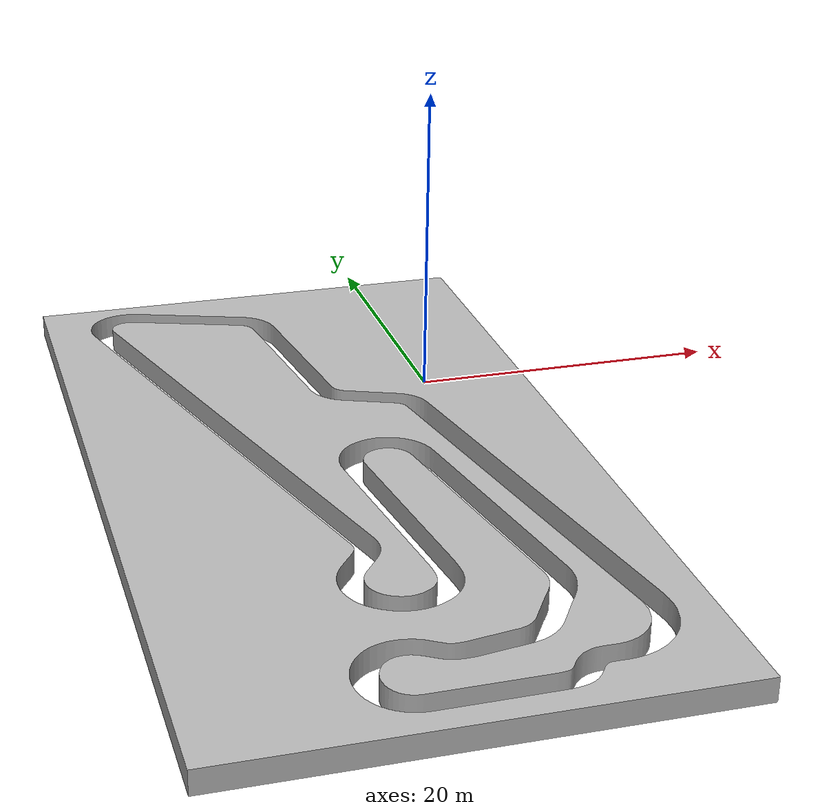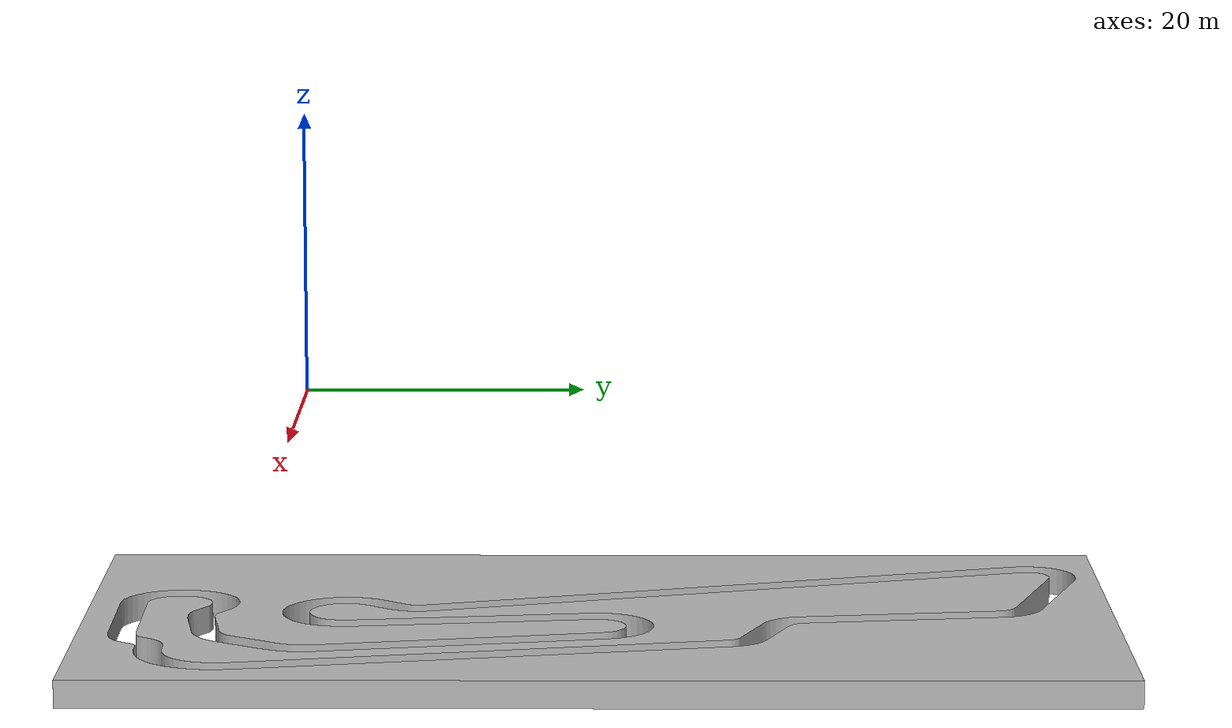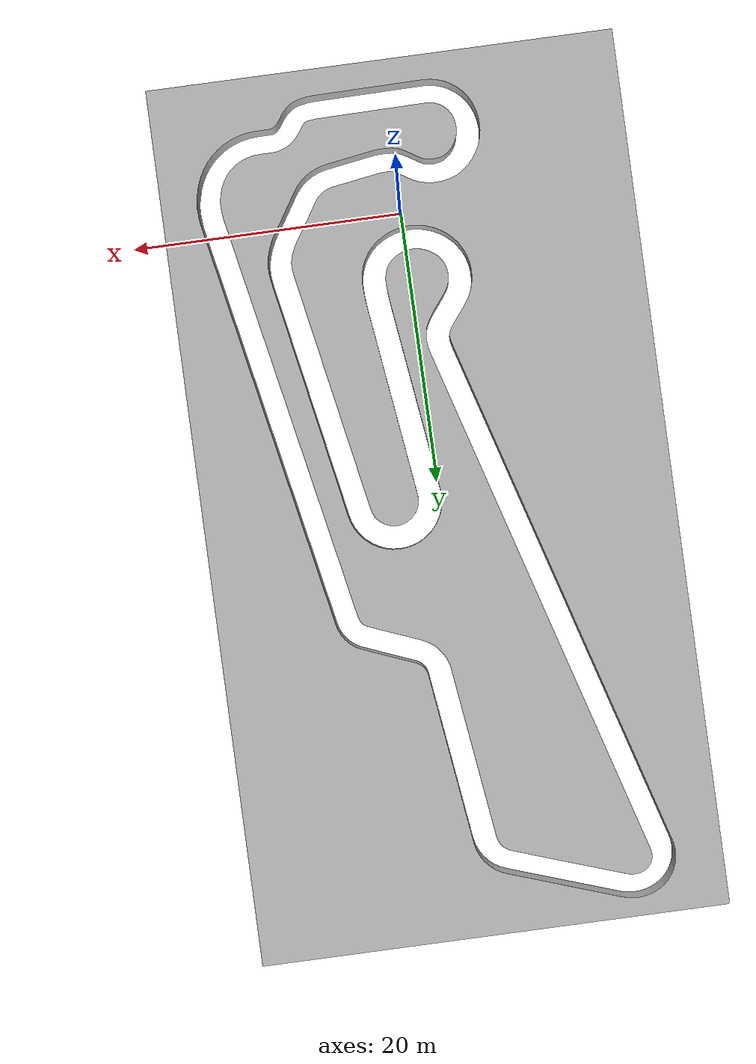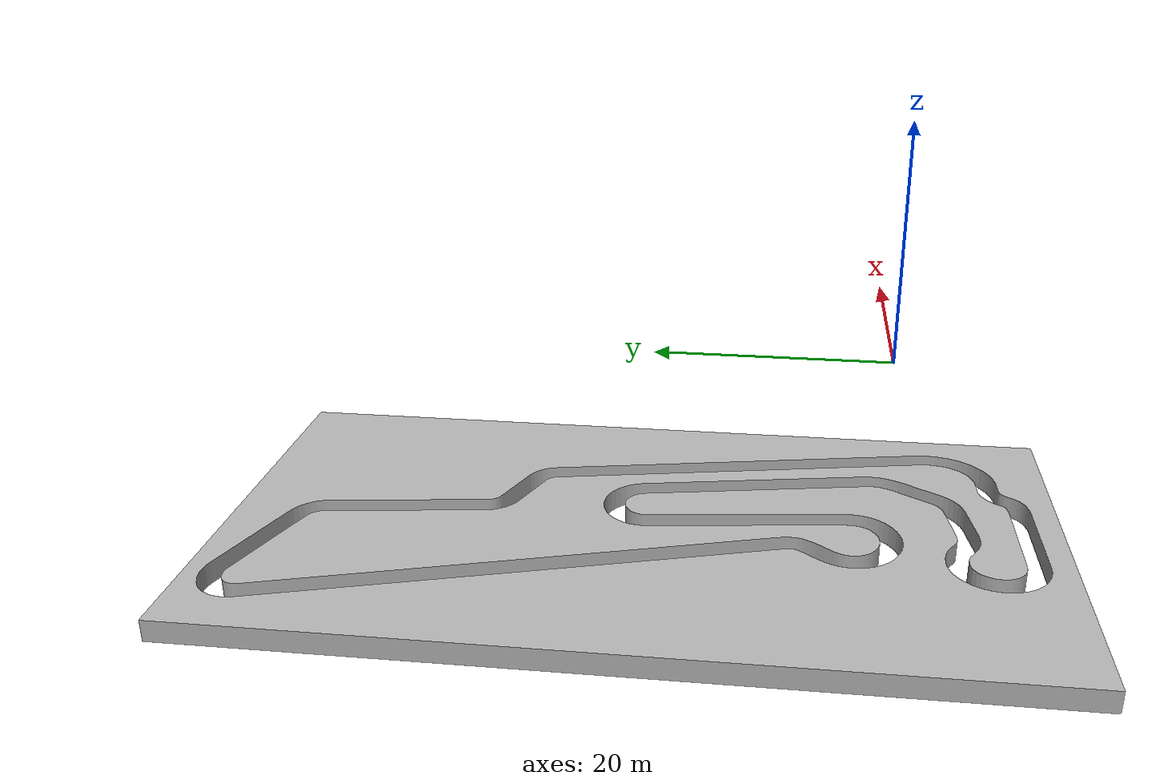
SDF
<?xml version='1.0'?>

<sdf version='1.4'>

  <model name="oschersleben_track">

    <link name="link">

      <collision name="collision">
        <geometry>
          <mesh>
            <uri>model://audubon-gazebo/world/oschersleben_track/oschersleben_track.stl</uri>
          </mesh>
        </geometry>
      </collision>

      <visual name="visual">
        <geometry>
          <mesh>
            <uri>model://audubon-gazebo/world/oschersleben_track/oschersleben_track.stl</uri>
          </mesh>
        </geometry>
      </visual>

    </link>

    <static>1</static>

  </model>

</sdf>
